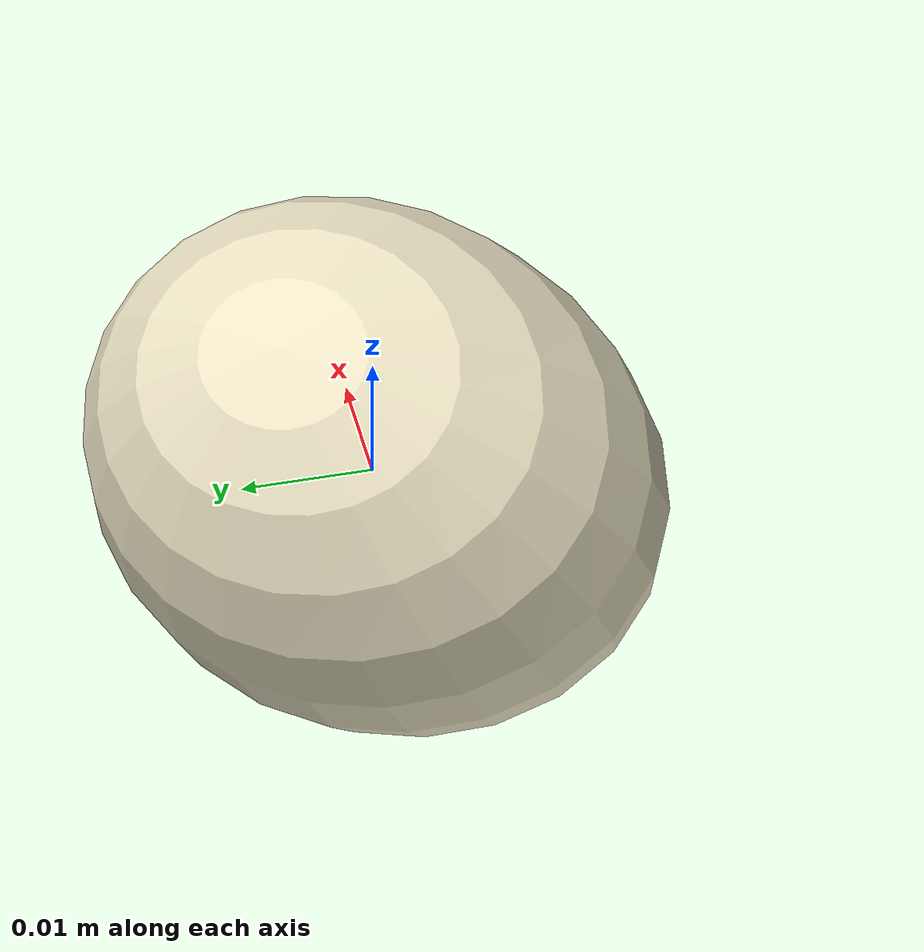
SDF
<?xml version="1.0"?>
<sdf version="1.7">
  <model name="cotton_pick_D_02">
    <static>false</static>
    <allow_auto_disable>false</allow_auto_disable>
    <link name="cotton_pick_D_02_link">
      <gravity>false</gravity>
      <inertial>
        <mass>0.01200</mass>
        <inertia>
          <ixx>0.00000124</ixx><iyy>0.00000124</iyy><izz>0.00000124</izz>
          <ixy>0</ixy><ixz>0</ixz><iyz>0</iyz>
        </inertia>
      </inertial>
      <visual name="cotton_pick_D_02_visual">
        <geometry><mesh><uri>model://cotton_pick_D_02/meshes/cotton_pick_D_02.dae</uri></mesh></geometry>
      </visual>
      <collision name="cotton_pick_D_02_sphere_collision">
        <geometry><sphere><radius>0.01610</radius></sphere></geometry>
        <surface>
          <friction><ode><mu>1.6</mu><mu2>1.6</mu2></ode></friction>
          <contact><ode><kp>8000</kp><kd>80</kd></ode></contact>
        </surface>
      </collision>
    </link>
  </model>
</sdf>
